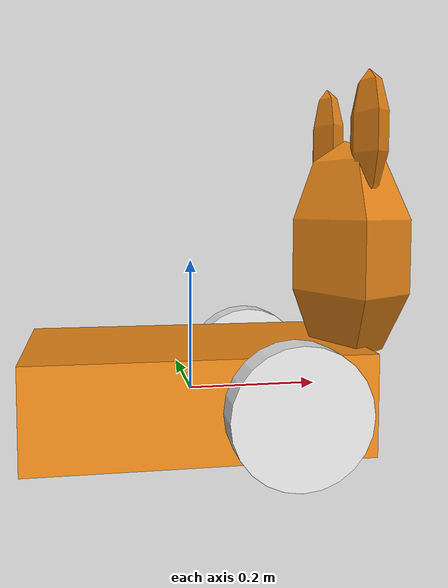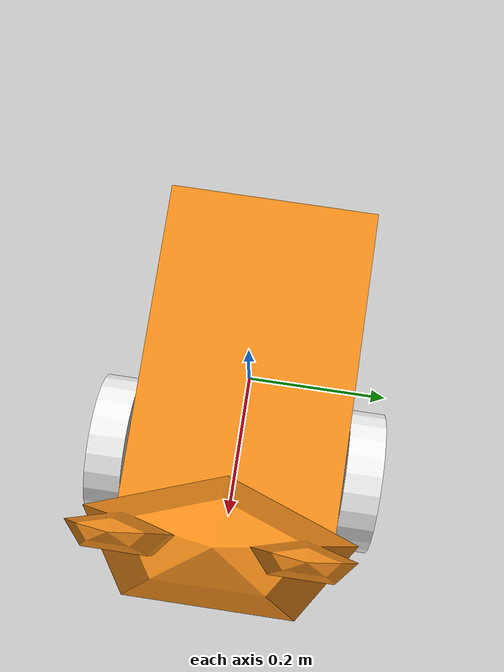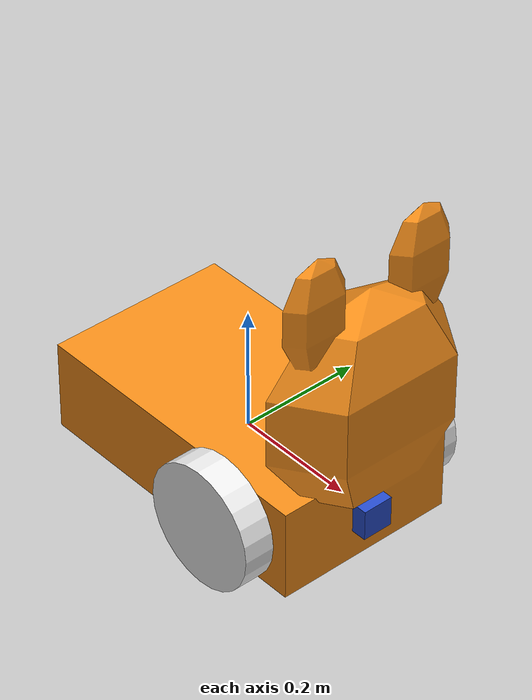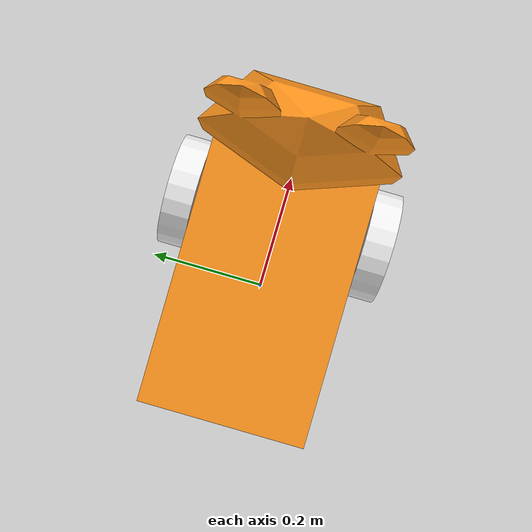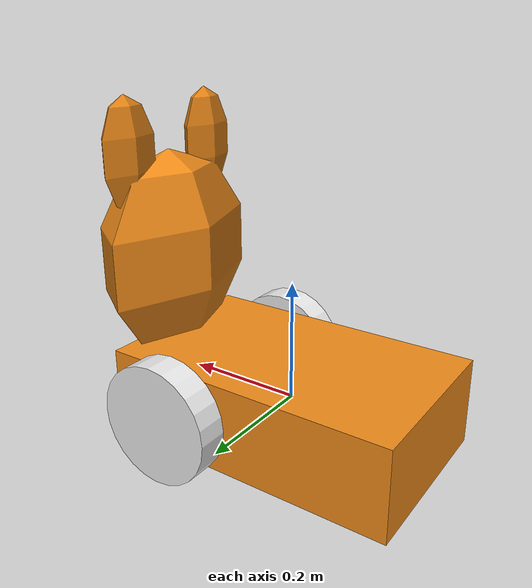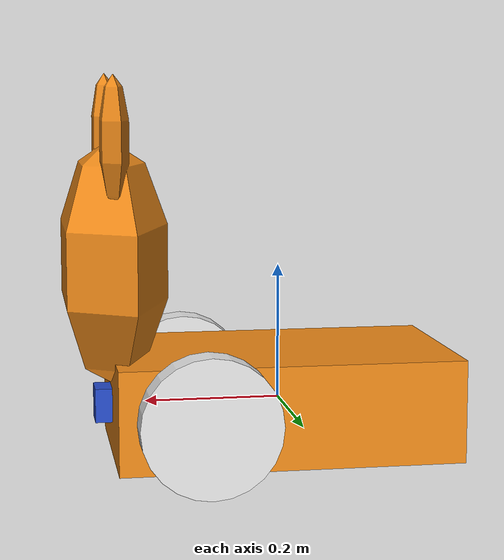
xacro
<?xml version="1.0"?>
<robot name="stubbs" xmlns:xacro="http://www.ros.org/wiki/xacro">
<xacro:include filename="$(find stubbs_description)/materials/materials.xacro" />
<xacro:include filename="$(find stubbs_description)/urdf/stubbs.gazebo" />
<xacro:include filename="$(find stubbs_description)/macros/macros.xacro" />

<xacro:property name="body_height" value=".15"/>
<xacro:property name="body_width" value=".3"/>
<xacro:property name="body_length" value=".5"/>
<xacro:property name="wheel_length" value=".05"/>
<xacro:property name="wheel_radius" value=".1"/>
<xacro:property name="caster_radius" value="0.025"/>

<xacro:property name="body_mass" value="1"/>
<xacro:property name="caster_mass" value="0.2"/>
<xacro:property name="wheel_mass" value="0.4"/>

<link name="base_link" />

<joint name="base_joint" type="fixed">
	<parent link="base_link"/>
	<child link="body"/>
</joint>

<link name="body">
	<collision>
		<origin xyz="0 0 0" rpy="0 0 0"/>
		<geometry>
			<box size="${body_length} ${body_width} ${body_height}"/>
		</geometry>
	</collision>

	<visual>
		<origin xyz="0 0 0" rpy="0 0 0"/>
		<geometry>
			<mesh filename="package://stubbs_description/meshes/stubbs_body.stl"/>
		</geometry>
		<material name="orange"/>
	</visual>

	<inertial>
		<origin xyz="0 0 0" rpy="0 0 0"/>
		<mass value="${body_mass}"/>
		<box_inertia m="${body_mass}" x="${body_length}" y="${body_width}" z="${body_height}" />
	</inertial>
</link>

<link name="left_wheel">
	<collision>
		<origin xyz="0 0 0" rpy="1.5707 0 0"/>
		<geometry>
			<cylinder length="${wheel_length}" radius="${wheel_radius}"/>
		</geometry>
		<surface>
			<friction>
				<ode>
					<mu>100000.0</mu>
					<mu2>100000.0</mu2>
					<slip1>0.0</slip1>
					<slip2>0.0</slip2>
				</ode>
			</friction>
        </surface>
	</collision>

	<visual>
		<origin xyz="0 0 0" rpy="1.5707 0 0"/>
		<geometry>
			<cylinder length="${wheel_length}" radius="${wheel_radius}"/>
		</geometry>
	</visual>
	<inertial>
		<origin xyz="0 0 0" rpy="0 0 0"/>
		<mass value="${wheel_mass}"/>
		<cylinder_inertia m="${wheel_mass}" r="${wheel_radius}" h="${wheel_length}"/>
	</inertial>
</link>

<link name="right_wheel">
	<collision>
		<origin xyz="0 0 0" rpy="1.5707 0 0"/>
		<geometry>
			<cylinder length="${wheel_length}" radius="${wheel_radius}"/>
		</geometry>
		<surface>
			<friction>
				<ode>
					<mu>100000.0</mu>
					<mu2>100000.0</mu2>
					<slip1>0.0</slip1>
					<slip2>0.0</slip2>
				</ode>
			</friction>
        </surface>
	</collision>

	<visual>
		<origin xyz="0 0 0" rpy="1.5707 0 0"/>
		<geometry>
			<cylinder length="${wheel_length}" radius="${wheel_radius}"/>
		</geometry>
	</visual>
	<inertial>
		<origin xyz="0 0 0" rpy="0 0 0"/>
		<mass value="${wheel_mass}"/>
		<cylinder_inertia m="${wheel_mass}" r="${wheel_radius}" h="${wheel_length}"/>
	</inertial>
</link>

<link name="caster_wheel">
	<collision>
		<origin xyz="0 0 0" rpy="0 0 0"/>
		<geometry>
			<sphere radius="${caster_radius}"/>
		</geometry>
	</collision>

	<visual>
		<origin xyz="0 0 0" rpy="0 0 0"/>
		<geometry>
			<sphere radius="${caster_radius}"/>
		</geometry>
	</visual>

	<inertial>
		<origin xyz="0 0 0" rpy="0 0 0"/>
		<mass value="${caster_mass}"/>
		<sphere_inertia m="${caster_mass}" r="${caster_radius}"/>
	</inertial>
</link>

<joint name="left_wheel_hinge" type="continuous">
	<origin xyz="${body_length/4} ${body_width/2+wheel_length/2} 0" rpy="0 0 0"/>
	<child link="left_wheel"/>
	<parent link="body"/>
	<axis xyz="0 1 0"/>
	<limit effort="100" velocity="10"/>
	<joint_properties damping="0.0" friction="0.0"/>
</joint>

<joint name="right_wheel_hinge" type="continuous">
	<origin xyz="${body_length/4} -${body_width/2+wheel_length/2} 0" rpy="0 0 0"/>
	<child link="right_wheel"/>
	<parent link="body"/>
	<axis xyz="0 1 0"/>
	<limit effort="100" velocity="10"/>
	<joint_properties damping="0.0" friction="0.0"/>
</joint>

<joint name="caster_to_body" type="fixed">
	<origin xyz="-${body_length/4} 0 -.075" rpy="0 0 0"/>
	<child link="caster_wheel"/>
	<parent link="body"/>
	<axis xyz="0 1 0"/>
</joint>

<transmission name="l_wheel_trans">
	<type>transmission_interface/SimpleTransmission</type>
	<joint name="left_wheel_hinge">
		<hardwareInterface>EffortJointInterface</hardwareInterface>
	</joint>
	<actuator name="l_motor">
		<hardwareInterface>EffortJointInterface</hardwareInterface>
		<mechanicalReduction>10</mechanicalReduction>
	</actuator>
</transmission>

<transmission name="r_wheel_trans">
	<type>transmission_interface/SimpleTransmission</type>
	<joint name="right_wheel_hinge">
		<hardwareInterface>EffortJointInterface</hardwareInterface>
	</joint>
	<actuator name="r_motor">
		<hardwareInterface>EffortJointInterface</hardwareInterface>
		<mechanicalReduction>10</mechanicalReduction>
	</actuator>
</transmission>

<link name="camera">
  <collision>
    <origin xyz="0 0 0" rpy="0 0 0"/>
    <geometry>
      <box size=".05 .05 .05"/>
    </geometry>
  </collision>

  <visual>
    <origin xyz="0 0 0" rpy="0 0 0"/>
    <geometry>
      <box size=".05 .05 .05"/>
    </geometry>
    <material name="blue"/>
  </visual>

  <inertial>
		<origin xyz="0 0 0" rpy="0 0 0"/>
		<mass value=".1"/>
		<inertia
			ixx="1.0" ixy="0.0" ixz="0.0"
			iyy="1.0" iyz="0.0"
			izz="1.0"/>
	</inertial>
</link>

<joint name="camera_fix" type="fixed">
	<origin xyz="${body_length/2} 0 0" rpy="0 0 0"/>
	<child link="camera"/>
	<parent link="body"/>
	<axis xyz="0 1 0"/>
</joint>

</robot>
